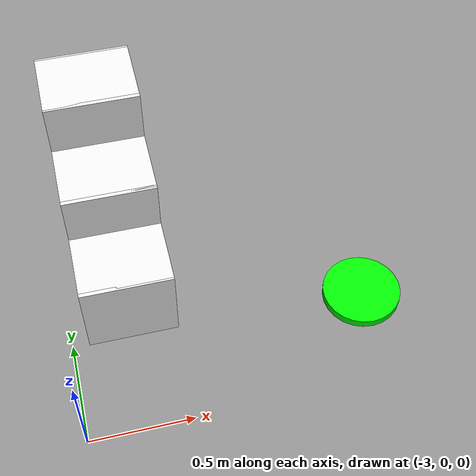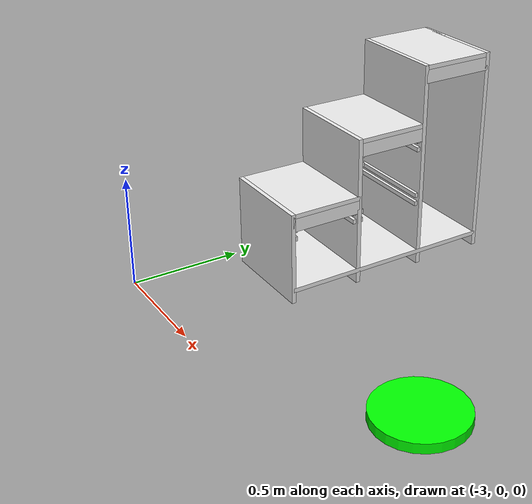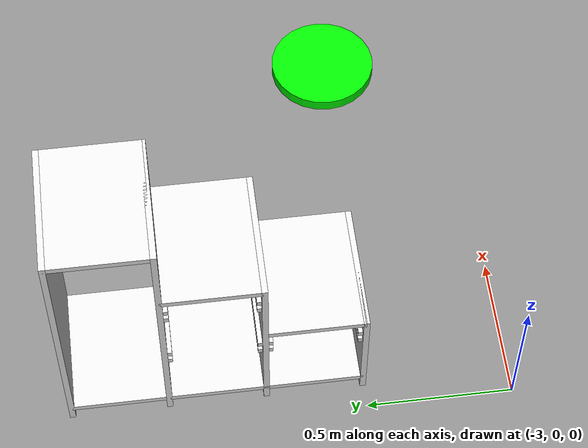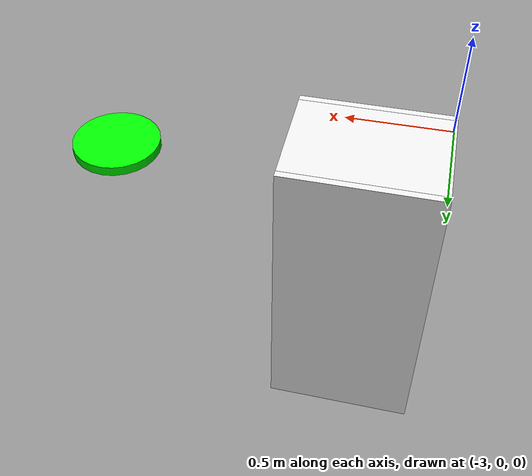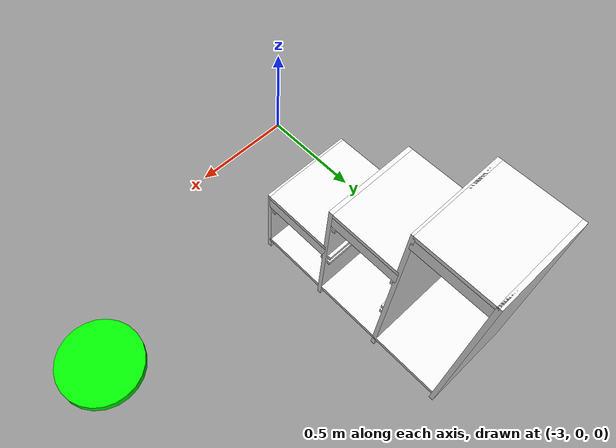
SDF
<sdf version="1.6">
 <world name="default">
  <model name="wrc_stair_like_drawer">
   <static>1</static>
   <link name="link">
    <inertial><mass>1</mass></inertial>
    <collision name="slit1">
     <pose>0 -0.495 0.21 0 -0 0</pose>
     <geometry><box><size>0.44 0.02 0.42</size></box></geometry>
    </collision>
    <visual name="slit1_v">
     <pose>0 -0.495 0.21 0 -0 0</pose>
     <geometry><box><size>0.44 0.02 0.42</size></box></geometry>
     <material>
      <script><uri>file://media/materials/scripts/gazebo.material</uri><name>Gazebo/White</name></script>
     </material>
    </visual>
    <collision name="holder_slit1_1_left_low">
     <pose>0 -0.48 0.3 0 -0 0</pose>
     <geometry><box><size>0.42 0.02 0.02</size></box></geometry>
    </collision>
    <visual name="holder_slit1_1_left_low_v">
     <pose>0 -0.48 0.3 0 -0 0</pose>
     <geometry><box><size>0.42 0.02 0.02</size></box></geometry>
     <material>
      <script><uri>file://media/materials/scripts/gazebo.material</uri><name>Gazebo/White</name></script>
     </material>
    </visual>
    <collision name="holder_slit1_1_left_high">
     <pose>0 -0.48 0.34 0 -0 0</pose>
     <geometry><box><size>0.42 0.02 0.02</size></box></geometry>
    </collision>
    <visual name="holder_slit1_1_left_high_v">
     <pose>0 -0.48 0.34 0 -0 0</pose>
     <geometry><box><size>0.42 0.02 0.02</size></box></geometry>
     <material>
      <script><uri>file://media/materials/scripts/gazebo.material</uri><name>Gazebo/White</name></script>
     </material>
    </visual>
    <collision name="holder_slit1_1_right_low">
     <pose>0 -0.18 0.3 0 -0 0</pose>
     <geometry><box><size>0.42 0.02 0.02</size></box></geometry>
    </collision>
    <visual name="holder_slit1_1_right_low_v">
     <pose>0 -0.18 0.3 0 -0 0</pose>
     <geometry><box><size>0.42 0.02 0.02</size></box></geometry>
     <material>
      <script><uri>file://media/materials/scripts/gazebo.material</uri><name>Gazebo/White</name></script>
     </material>
    </visual>
    <collision name="holder_slit1_1_right_high">
     <pose>0 -0.18 0.34 0 -0 0</pose>
     <geometry><box><size>0.42 0.02 0.02</size></box></geometry>
    </collision>
    <visual name="holder_slit1_1_right_high_v">
     <pose>0 -0.18 0.34 0 -0 0</pose>
     <geometry><box><size>0.42 0.02 0.02</size></box></geometry>
     <material>
      <script><uri>file://media/materials/scripts/gazebo.material</uri><name>Gazebo/White</name></script>
     </material>
    </visual>
    <collision name="slit2">
     <pose>0 -0.165 0.34 0 -0 0</pose>
     <geometry><box><size>0.44 0.02 0.68</size></box></geometry>
    </collision>
    <visual name="slit2_v">
     <pose>0 -0.165 0.34 0 -0 0</pose>
     <geometry><box><size>0.44 0.02 0.68</size></box></geometry>
     <material>
      <script><uri>file://media/materials/scripts/gazebo.material</uri><name>Gazebo/White</name></script>
     </material>
    </visual>
    <collision name="holder_slit2_1_left_low">
     <pose>0 -0.15 0.3 0 -0 0</pose>
     <geometry><box><size>0.42 0.02 0.02</size></box></geometry>
    </collision>
    <visual name="holder_slit2_1_left_low_v">
     <pose>0 -0.15 0.3 0 -0 0</pose>
     <geometry><box><size>0.42 0.02 0.02</size></box></geometry>
     <material>
      <script><uri>file://media/materials/scripts/gazebo.material</uri><name>Gazebo/White</name></script>
     </material>
    </visual>
    <collision name="holder_slit2_1_left_high">
     <pose>0 -0.15 0.34 0 -0 0</pose>
     <geometry><box><size>0.42 0.02 0.02</size></box></geometry>
    </collision>
    <visual name="holder_slit2_1_left_high_v">
     <pose>0 -0.15 0.34 0 -0 0</pose>
     <geometry><box><size>0.42 0.02 0.02</size></box></geometry>
     <material>
      <script><uri>file://media/materials/scripts/gazebo.material</uri><name>Gazebo/White</name></script>
     </material>
    </visual>
    <collision name="holder_slit2_1_right_low">
     <pose>0 0.15 0.3 0 -0 0</pose>
     <geometry><box><size>0.42 0.02 0.02</size></box></geometry>
    </collision>
    <visual name="holder_slit2_1_right_low_v">
     <pose>0 0.15 0.3 0 -0 0</pose>
     <geometry><box><size>0.42 0.02 0.02</size></box></geometry>
     <material>
      <script><uri>file://media/materials/scripts/gazebo.material</uri><name>Gazebo/White</name></script>
     </material>
    </visual>
    <collision name="holder_slit2_1_right_high">
     <pose>0 0.15 0.34 0 -0 0</pose>
     <geometry><box><size>0.42 0.02 0.02</size></box></geometry>
    </collision>
    <visual name="holder_slit2_1_right_high_v">
     <pose>0 0.15 0.34 0 -0 0</pose>
     <geometry><box><size>0.42 0.02 0.02</size></box></geometry>
     <material>
      <script><uri>file://media/materials/scripts/gazebo.material</uri><name>Gazebo/White</name></script>
     </material>
    </visual>
    <collision name="holder_slit2_2_left_low">
     <pose>0 -0.15 0.56 0 -0 0</pose>
     <geometry><box><size>0.42 0.02 0.02</size></box></geometry>
    </collision>
    <visual name="holder_slit2_2_left_low_v">
     <pose>0 -0.15 0.56 0 -0 0</pose>
     <geometry><box><size>0.42 0.02 0.02</size></box></geometry>
     <material>
      <script><uri>file://media/materials/scripts/gazebo.material</uri><name>Gazebo/White</name></script>
     </material>
    </visual>
    <collision name="holder_slit2_2_left_high">
     <pose>0 -0.15 0.6 0 -0 0</pose>
     <geometry><box><size>0.42 0.02 0.02</size></box></geometry>
    </collision>
    <visual name="holder_slit2_2_left_high_v">
     <pose>0 -0.15 0.6 0 -0 0</pose>
     <geometry><box><size>0.42 0.02 0.02</size></box></geometry>
     <material>
      <script><uri>file://media/materials/scripts/gazebo.material</uri><name>Gazebo/White</name></script>
     </material>
    </visual>
    <collision name="holder_slit2_2_right_low">
     <pose>0 0.15 0.56 0 -0 0</pose>
     <geometry><box><size>0.42 0.02 0.02</size></box></geometry>
    </collision>
    <visual name="holder_slit2_2_right_low_v">
     <pose>0 0.15 0.56 0 -0 0</pose>
     <geometry><box><size>0.42 0.02 0.02</size></box></geometry>
     <material>
      <script><uri>file://media/materials/scripts/gazebo.material</uri><name>Gazebo/White</name></script>
     </material>
    </visual>
    <collision name="holder_slit2_2_right_high">
     <pose>0 0.15 0.6 0 -0 0</pose>
     <geometry><box><size>0.42 0.02 0.02</size></box></geometry>
    </collision>
    <visual name="holder_slit2_2_right_high_v">
     <pose>0 0.15 0.6 0 -0 0</pose>
     <geometry><box><size>0.42 0.02 0.02</size></box></geometry>
     <material>
      <script><uri>file://media/materials/scripts/gazebo.material</uri><name>Gazebo/White</name></script>
     </material>
    </visual>
    <collision name="slit3">
     <pose>0 0.165 0.47 0 -0 0</pose>
     <geometry><box><size>0.44 0.02 0.94</size></box></geometry>
    </collision>
    <visual name="slit3_v">
     <pose>0 0.165 0.47 0 -0 0</pose>
     <geometry><box><size>0.44 0.02 0.94</size></box></geometry>
     <material>
      <script><uri>file://media/materials/scripts/gazebo.material</uri><name>Gazebo/White</name></script>
     </material>
    </visual>
    <collision name="slit4">
     <pose>0 0.495 0.47 0 -0 0</pose>
     <geometry><box><size>0.44 0.02 0.94</size></box></geometry>
    </collision>
    <visual name="slit4_v">
     <pose>0 0.495 0.47 0 -0 0</pose>
     <geometry><box><size>0.44 0.02 0.94</size></box></geometry>
     <material>
      <script><uri>file://media/materials/scripts/gazebo.material</uri><name>Gazebo/White</name></script>
     </material>
    </visual>
    <collision name="top1">
     <pose>0 -0.33 0.41 0 -0 0</pose>
     <geometry><box><size>0.44 0.33 0.02</size></box></geometry>
    </collision>
    <visual name="top1_v">
     <pose>0 -0.33 0.41 0 -0 0</pose>
     <geometry><box><size>0.44 0.33 0.02</size></box></geometry>
     <material>
      <script><uri>file://media/materials/scripts/gazebo.material</uri><name>Gazebo/White</name></script>
     </material>
    </visual>
    <collision name="top1_front">
     <pose>0.21 -0.33 0.37 0 -0 0</pose>
     <geometry><box><size>0.02 0.33 0.06</size></box></geometry>
    </collision>
    <visual name="top1_front_v">
     <pose>0.21 -0.33 0.37 0 -0 0</pose>
     <geometry><box><size>0.02 0.33 0.06</size></box></geometry>
     <material>
      <script><uri>file://media/materials/scripts/gazebo.material</uri><name>Gazebo/White</name></script>
     </material>
    </visual>
    <collision name="top2">
     <pose>0 0 0.67 0 -0 0</pose>
     <geometry><box><size>0.44 0.33 0.02</size></box></geometry>
    </collision>
    <visual name="top2_v">
     <pose>0 0 0.67 0 -0 0</pose>
     <geometry><box><size>0.44 0.33 0.02</size></box></geometry>
     <material>
      <script><uri>file://media/materials/scripts/gazebo.material</uri><name>Gazebo/White</name></script>
     </material>
    </visual>
    <collision name="top2_front">
     <pose>0.21 0 0.63 0 -0 0</pose>
     <geometry><box><size>0.02 0.33 0.06</size></box></geometry>
    </collision>
    <visual name="top2_front_v">
     <pose>0.21 0 0.63 0 -0 0</pose>
     <geometry><box><size>0.02 0.33 0.06</size></box></geometry>
     <material>
      <script><uri>file://media/materials/scripts/gazebo.material</uri><name>Gazebo/White</name></script>
     </material>
    </visual>
    <collision name="top3">
     <pose>0 0.33 0.93 0 -0 0</pose>
     <geometry><box><size>0.44 0.33 0.02</size></box></geometry>
    </collision>
    <visual name="top3_v">
     <pose>0 0.33 0.93 0 -0 0</pose>
     <geometry><box><size>0.44 0.33 0.02</size></box></geometry>
     <material>
      <script><uri>file://media/materials/scripts/gazebo.material</uri><name>Gazebo/White</name></script>
     </material>
    </visual>
    <collision name="top3_front">
     <pose>0.21 0.33 0.89 0 -0 0</pose>
     <geometry><box><size>0.02 0.33 0.06</size></box></geometry>
    </collision>
    <visual name="top3_front_v">
     <pose>0.21 0.33 0.89 0 -0 0</pose>
     <geometry><box><size>0.02 0.33 0.06</size></box></geometry>
     <material>
      <script><uri>file://media/materials/scripts/gazebo.material</uri><name>Gazebo/White</name></script>
     </material>
    </visual>
    <collision name="bottom">
     <pose>0 0 0.06 0 -0 0</pose>
     <geometry><box><size>0.44 0.99 0.02</size></box></geometry>
    </collision>
    <visual name="bottom_v">
     <pose>0 0 0.06 0 -0 0</pose>
     <geometry><box><size>0.44 0.99 0.02</size></box></geometry>
     <material>
      <script><uri>file://media/materials/scripts/gazebo.material</uri><name>Gazebo/White</name></script>
     </material>
    </visual>
   </link>
   <pose>-2.7 1 0 0 -0 0</pose>
  </model>
  <model name="RotatingTable">
   <link name="link_0">
    <inertial>
     <mass>94.5653</mass>
     <inertia>
      <ixx>0.0933732</ixx>
      <ixy>0</ixy>
      <ixz>0</ixz>
      <iyy>0.251341</iyy>
      <iyz>0</iyz>
      <izz>0.344057</izz>
     </inertia>
    </inertial>
    <pose>-0.000397 -0.013044 -0.078289 0 -0 0</pose>
    <visual name="visual">
     <geometry><box><size>0.178473 0.10866 0.00646</size></box></geometry>
     <material>
      <lighting>1</lighting>
      <script><uri>file://media/materials/scripts/gazebo.material</uri><name>Gazebo/Grey</name></script>
      <shader type="pixel"><normal_map>__default__</normal_map></shader>
      <emissive>0 0 0 1</emissive>
      <ambient>0.3 0.3 0.3 1</ambient>
      <diffuse>0.7 0.7 0.7 1</diffuse>
      <specular>0.01 0.01 0.01 1</specular>
     </material>
    </visual>
    <collision name="collision">
     <geometry><box><size>0.178473 0.10866 0.00646</size></box></geometry>
     <surface>
      <friction>
       <ode><mu>1</mu><mu2>1</mu2><fdir1>0 0 0</fdir1><slip1>0</slip1><slip2>0</slip2></ode>
       <torsional>
        <coefficient>1</coefficient>
        <patch_radius>0</patch_radius>
        <surface_radius>0</surface_radius>
        <use_patch_radius>1</use_patch_radius>
        <ode><slip>0</slip></ode>
       </torsional>
      </friction>
      <bounce><restitution_coefficient>0</restitution_coefficient><threshold>1e+06</threshold></bounce>
      <contact>
       <collide_without_contact>0</collide_without_contact>
       <collide_without_contact_bitmask>1</collide_without_contact_bitmask>
       <collide_bitmask>1</collide_bitmask>
       <ode>
        <soft_cfm>0</soft_cfm>
        <soft_erp>0.2</soft_erp>
        <kp>1e+13</kp>
        <kd>1</kd>
        <max_vel>0.01</max_vel>
        <min_depth>0</min_depth>
       </ode>
       <bullet>
        <split_impulse>1</split_impulse>
        <split_impulse_penetration_threshold>-0.01</split_impulse_penetration_threshold>
        <soft_cfm>0</soft_cfm>
        <soft_erp>0.2</soft_erp>
        <kp>1e+13</kp>
        <kd>1</kd>
       </bullet>
      </contact>
     </surface>
    </collision>
   </link>
   <link name="link_1">
    <inertial>
     <mass>5.85081</mass>
     <inertia>
      <ixx>0.0552513</ixx>
      <ixy>0</ixy>
      <ixz>0</ixz>
      <iyy>0.0552513</iyy>
      <iyz>0</iyz>
      <izz>0.108729</izz>
     </inertia>
    </inertial>
    <pose>-0.002732 -0.016648 -0.039749 0 -0 0</pose>
    <visual name="visual">
     <geometry><cylinder><radius>0.192788</radius><length>0.0426455</length></cylinder></geometry>
     <material>
      <lighting>1</lighting>
      <script><uri>file://media/materials/scripts/gazebo.material</uri><name>Gazebo/Grey</name></script>
      <shader type="pixel"><normal_map>__default__</normal_map></shader>
      <emissive>0 0 0 1</emissive>
      <ambient>0 1 0 1</ambient>
      <diffuse>0.7 0.7 0.7 1</diffuse>
      <specular>0.01 0.01 0.01 1</specular>
     </material>
    </visual>
    <collision name="collision">
     <geometry><cylinder><radius>0.192788</radius><length>0.042645</length></cylinder></geometry>
     <surface>
      <friction>
       <ode><mu>41</mu><mu2>41</mu2><fdir1>0 0 0</fdir1><slip1>0</slip1><slip2>0</slip2></ode>
       <torsional>
        <coefficient>1</coefficient>
        <patch_radius>0</patch_radius>
        <surface_radius>0</surface_radius>
        <use_patch_radius>1</use_patch_radius>
        <ode><slip>0</slip></ode>
       </torsional>
      </friction>
      <bounce><restitution_coefficient>0</restitution_coefficient><threshold>1e+06</threshold></bounce>
      <contact>
       <collide_without_contact>0</collide_without_contact>
       <collide_without_contact_bitmask>1</collide_without_contact_bitmask>
       <collide_bitmask>1</collide_bitmask>
       <ode>
        <soft_cfm>0</soft_cfm>
        <soft_erp>0.2</soft_erp>
        <kp>1e+13</kp>
        <kd>1</kd>
        <max_vel>0.01</max_vel>
        <min_depth>0</min_depth>
       </ode>
       <bullet>
        <split_impulse>1</split_impulse>
        <split_impulse_penetration_threshold>-0.01</split_impulse_penetration_threshold>
        <soft_cfm>0</soft_cfm>
        <soft_erp>0.2</soft_erp>
        <kp>1e+13</kp>
        <kd>1</kd>
       </bullet>
      </contact>
     </surface>
    </collision>
   </link>
   <joint name="link_1_JOINT_0" type="revolute">
    <parent>link_1</parent>
    <child>link_0</child>
    <axis>
     <xyz>0 0 1</xyz>
     <use_parent_model_frame>0</use_parent_model_frame>
     <limit>
      <lower>-1.79769e+308</lower>
      <upper>1.79769e+308</upper>
      <effort>-1</effort>
      <velocity>-1</velocity>
     </limit>
     <dynamics>
      <spring_reference>0</spring_reference>
      <spring_stiffness>0</spring_stiffness>
      <damping>0</damping>
      <friction>-0.13</friction>
     </dynamics>
    </axis>
    <physics>
     <ode><limit><cfm>0</cfm><erp>0</erp></limit><suspension><cfm>0</cfm><erp>0.2</erp></suspension></ode>
    </physics>
   </joint>
   <static>0</static>
   <pose>-1.55235 0.477299 0.081519 0 -0 0</pose>
  </model>
 </world>
</sdf>
